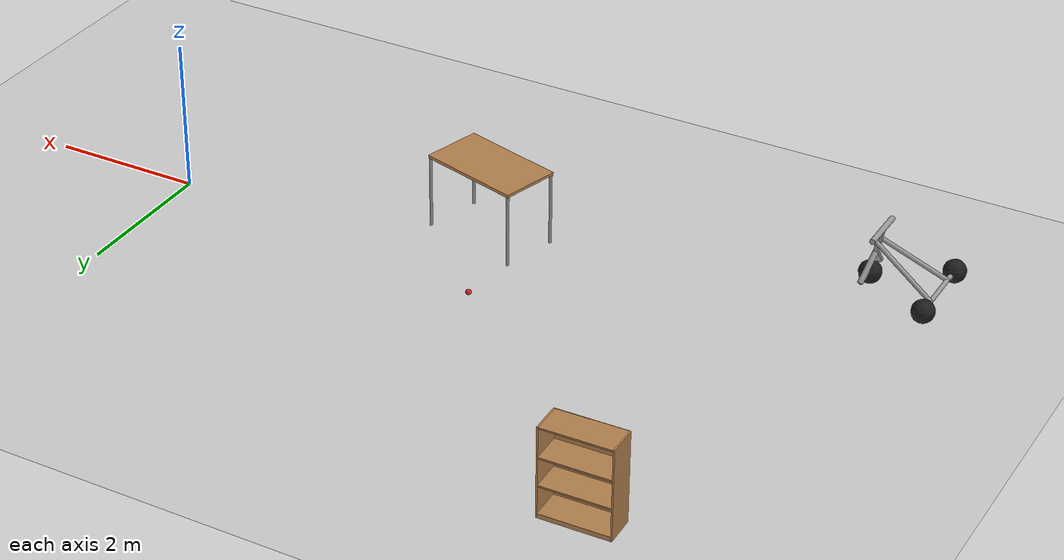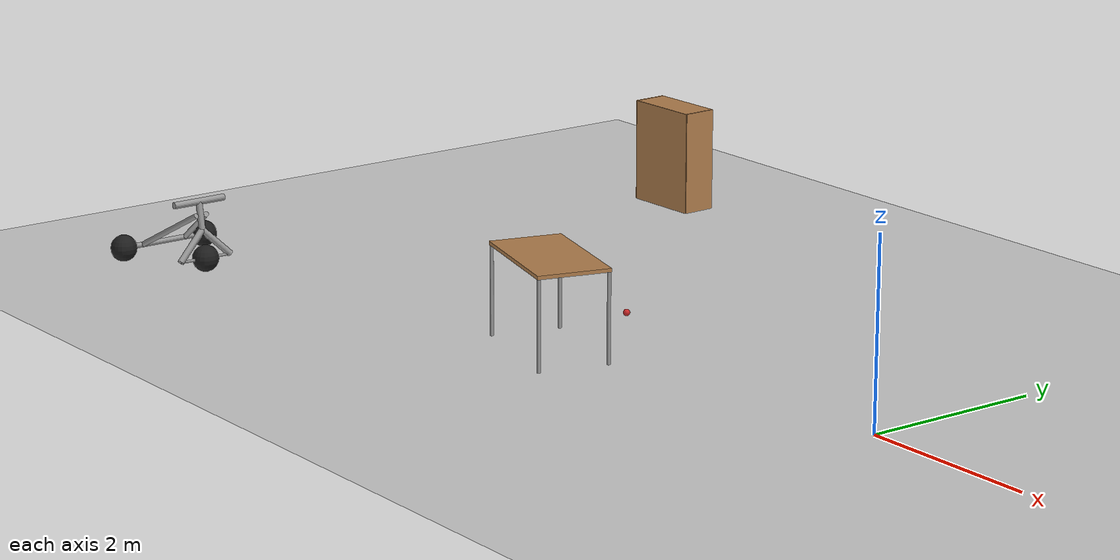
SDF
<sdf version="1.6">
 <world name="default">
  <model name="ground_plane">
   <static>1</static>
   <link name="link">
    <collision name="collision">
     <geometry><plane><normal>0 0 1</normal><size>100 100</size></plane></geometry>
     <surface><friction><ode><mu>100</mu><mu2>50</mu2></ode></friction></surface>
    </collision>
    <visual name="visual">
     <cast_shadows>0</cast_shadows>
     <geometry><plane><normal>0 0 1</normal><size>100 100</size></plane></geometry>
     <material>
      <script><uri>file://media/materials/scripts/gazebo.material</uri><name>Gazebo/Grey</name></script>
     </material>
    </visual>
   </link>
  </model>
  <model name="table">
   <static>0</static>
   <link name="link">
    <collision name="surface">
     <pose>0 0 1 0 -0 0</pose>
     <geometry><box><size>1.5 0.8 0.03</size></box></geometry>
     <surface><friction><ode><mu>0.6</mu><mu2>0.6</mu2></ode></friction></surface>
    </collision>
    <visual name="visual1">
     <pose>0 0 1 0 -0 0</pose>
     <geometry><box><size>1.4 0.8 0.04</size></box></geometry>
     <material>
      <script><uri>file://media/materials/scripts/gazebo.material</uri><name>Gazebo/Wood</name></script>
     </material>
    </visual>
    <collision name="front_left_leg">
     <pose>0.68 0.38 0.5 0 -0 0</pose>
     <geometry><cylinder><radius>0.02</radius><length>1</length></cylinder></geometry>
    </collision>
    <visual name="front_left_leg">
     <pose>0.68 0.38 0.5 0 -0 0</pose>
     <geometry><cylinder><radius>0.02</radius><length>1</length></cylinder></geometry>
     <material>
      <script><uri>file://media/materials/scripts/gazebo.material</uri><name>Gazebo/Grey</name></script>
     </material>
    </visual>
    <collision name="front_right_leg">
     <pose>0.68 -0.38 0.5 0 -0 0</pose>
     <geometry><cylinder><radius>0.02</radius><length>1</length></cylinder></geometry>
    </collision>
    <visual name="front_right_leg">
     <pose>0.68 -0.38 0.5 0 -0 0</pose>
     <geometry><cylinder><radius>0.02</radius><length>1</length></cylinder></geometry>
     <material>
      <script><uri>file://media/materials/scripts/gazebo.material</uri><name>Gazebo/Grey</name></script>
     </material>
    </visual>
    <collision name="back_right_leg">
     <pose>-0.68 -0.38 0.5 0 -0 0</pose>
     <geometry><cylinder><radius>0.02</radius><length>1</length></cylinder></geometry>
    </collision>
    <visual name="back_right_leg">
     <pose>-0.68 -0.38 0.5 0 -0 0</pose>
     <geometry><cylinder><radius>0.02</radius><length>1</length></cylinder></geometry>
     <material>
      <script><uri>file://media/materials/scripts/gazebo.material</uri><name>Gazebo/Grey</name></script>
     </material>
    </visual>
    <collision name="back_left_leg">
     <pose>-0.68 0.38 0.5 0 -0 0</pose>
     <geometry><cylinder><radius>0.02</radius><length>1</length></cylinder></geometry>
    </collision>
    <visual name="back_left_leg">
     <pose>-0.68 0.38 0.5 0 -0 0</pose>
     <geometry><cylinder><radius>0.02</radius><length>1</length></cylinder></geometry>
     <material>
      <script><uri>file://media/materials/scripts/gazebo.material</uri><name>Gazebo/Grey</name></script>
     </material>
    </visual>
    <inertial>
     <inertia><ixx>1</ixx><ixy>0</ixy><ixz>0</ixz><iyy>1</iyy><iyz>0</iyz><izz>1</izz></inertia>
     <mass>1</mass>
    </inertial>
   </link>
   <pose>-4.025 -0.858726 -6e-06 2e-06 -5e-06 -0.271572</pose>
  </model>
  <model name="bookshelf">
   <static>1</static>
   <link name="link">
    <inertial><mass>1</mass></inertial>
    <collision name="back">
     <pose>0 0.005 0.6 0 -0 0</pose>
     <geometry><box><size>0.9 0.01 1.2</size></box></geometry>
    </collision>
    <visual name="visual1">
     <pose>0 0.005 0.6 0 -0 0</pose>
     <geometry><box><size>0.9 0.01 1.2</size></box></geometry>
     <material>
      <script><uri>file://media/materials/scripts/gazebo.material</uri><name>Gazebo/Wood</name></script>
     </material>
    </visual>
    <collision name="left_side">
     <pose>0.45 -0.195 0.6 0 -0 0</pose>
     <geometry><box><size>0.02 0.4 1.2</size></box></geometry>
    </collision>
    <visual name="visual2">
     <pose>0.45 -0.195 0.6 0 -0 0</pose>
     <geometry><box><size>0.02 0.4 1.2</size></box></geometry>
     <material>
      <script><uri>file://media/materials/scripts/gazebo.material</uri><name>Gazebo/Wood</name></script>
     </material>
    </visual>
    <collision name="right_side">
     <pose>-0.45 -0.195 0.6 0 -0 0</pose>
     <geometry><box><size>0.02 0.4 1.2</size></box></geometry>
    </collision>
    <visual name="visual3">
     <pose>-0.45 -0.195 0.6 0 -0 0</pose>
     <geometry><box><size>0.02 0.4 1.2</size></box></geometry>
     <material>
      <script><uri>file://media/materials/scripts/gazebo.material</uri><name>Gazebo/Wood</name></script>
     </material>
    </visual>
    <collision name="bottom">
     <pose>0 -0.195 0.03 0 -0 0</pose>
     <geometry><box><size>0.88 0.4 0.06</size></box></geometry>
    </collision>
    <visual name="visual4">
     <pose>0 -0.195 0.03 0 -0 0</pose>
     <geometry><box><size>0.88 0.4 0.06</size></box></geometry>
     <material>
      <script><uri>file://media/materials/scripts/gazebo.material</uri><name>Gazebo/Wood</name></script>
     </material>
    </visual>
    <collision name="top">
     <pose>0 -0.195 1.19 0 -0 0</pose>
     <geometry><box><size>0.88 0.4 0.02</size></box></geometry>
    </collision>
    <visual name="visual5">
     <pose>0 -0.195 1.19 0 -0 0</pose>
     <geometry><box><size>0.88 0.4 0.02</size></box></geometry>
     <material>
      <script><uri>file://media/materials/scripts/gazebo.material</uri><name>Gazebo/Wood</name></script>
     </material>
    </visual>
    <collision name="low_shelf">
     <pose>0 -0.195 0.43 0 -0 0</pose>
     <geometry><box><size>0.88 0.4 0.02</size></box></geometry>
    </collision>
    <visual name="visual6">
     <pose>0 -0.195 0.43 0 -0 0</pose>
     <geometry><box><size>0.88 0.4 0.02</size></box></geometry>
     <material>
      <script><uri>file://media/materials/scripts/gazebo.material</uri><name>Gazebo/Wood</name></script>
     </material>
    </visual>
    <collision name="high_shelf">
     <pose>0 -0.195 0.8 0 -0 0</pose>
     <geometry><box><size>0.88 0.4 0.02</size></box></geometry>
    </collision>
    <visual name="visual7">
     <pose>0 -0.195 0.8 0 -0 0</pose>
     <geometry><box><size>0.88 0.4 0.02</size></box></geometry>
     <material>
      <script><uri>file://media/materials/scripts/gazebo.material</uri><name>Gazebo/Wood</name></script>
     </material>
    </visual>
   </link>
   <pose>-7.78425 3.60474 0 0 0 -3.11544</pose>
  </model>
  <model name="cricket_ball">
   <link name="link">
    <pose>0 0 0.0375 0 -0 0</pose>
    <inertial>
     <mass>0.1467</mass>
     <inertia>
      <ixx>8.25187e-05</ixx>
      <ixy>0</ixy>
      <ixz>0</ixz>
      <iyy>8.25187e-05</iyy>
      <iyz>0</iyz>
      <izz>8.25187e-05</izz>
     </inertia>
    </inertial>
    <collision name="collision">
     <geometry><sphere><radius>0.0375</radius></sphere></geometry>
     <surface>
      <contact>
       <poissons_ratio>0.347</poissons_ratio>
       <elastic_modulus>8.8e+09</elastic_modulus>
       <ode><kp>100000</kp><kd>100</kd><max_vel>100</max_vel><min_depth>0.001</min_depth></ode>
      </contact>
      <friction>
       <torsional>
        <coefficient>1</coefficient>
        <use_patch_radius>0</use_patch_radius>
        <surface_radius>0.01</surface_radius>
       </torsional>
      </friction>
     </surface>
    </collision>
    <visual name="visual">
     <geometry><sphere><radius>0.0375</radius></sphere></geometry>
     <material>
      <script><uri>file://media/materials/scripts/gazebo.material</uri><name>Gazebo/Red</name></script>
     </material>
    </visual>
    <velocity_decay><linear>0</linear><angular>0.005</angular></velocity_decay>
   </link>
   <pose>-4.49449 0.510747 -0.000766 -0.114049 -0.016048 -0.073046</pose>
  </model>
  <model name="trisphere_cycle">
   <link name="frame">
    <pose>-0.408559 0 0.385023 0 -0.522021 0</pose>
    <inertial>
     <mass>10</mass>
     <inertia><ixx>0.228</ixx><iyy>0.743521</iyy><izz>0.965521</izz><ixy>0</ixy><ixz>0</ixz><iyz>0</iyz></inertia>
    </inertial>
    <collision name="axle_collision">
     <pose>-0.471335 0 0 1.5708 -0 0</pose>
     <geometry><cylinder><length>1.03923</length><radius>0.03</radius></cylinder></geometry>
    </collision>
    <visual name="axle_visual">
     <pose>-0.471335 0 0 1.5708 -0 0</pose>
     <geometry><cylinder><length>1.03923</length><radius>0.03</radius></cylinder></geometry>
     <material>
      <script><uri>file://media/materials/scripts/gazebo.material</uri><name>Gazebo/Grey</name></script>
     </material>
    </visual>
    <collision name="frame_left_collision">
     <pose>0 0.171552 0 2.986 1.57079 2.76675</pose>
     <geometry><cylinder><length>1.00317</length><radius>0.03</radius></cylinder></geometry>
    </collision>
    <visual name="frame_left_visual">
     <pose>0 0.171552 0 2.986 1.57079 2.76675</pose>
     <geometry><cylinder><length>1.00317</length><radius>0.03</radius></cylinder></geometry>
     <material>
      <script><uri>file://media/materials/scripts/gazebo.material</uri><name>Gazebo/Grey</name></script>
     </material>
    </visual>
    <collision name="frame_right_collision">
     <pose>0 -0.171552 0 -2.986 1.57079 -2.76675</pose>
     <geometry><cylinder><length>1.00317</length><radius>0.03</radius></cylinder></geometry>
    </collision>
    <visual name="frame_right_visual">
     <pose>0 -0.171552 0 -2.986 1.57079 -2.76675</pose>
     <geometry><cylinder><length>1.00317</length><radius>0.03</radius></cylinder></geometry>
     <material>
      <script><uri>file://media/materials/scripts/gazebo.material</uri><name>Gazebo/Grey</name></script>
     </material>
    </visual>
   </link>
   <link name="fork">
    <pose>0.041441 0 0.385023 0 -0.174533 0</pose>
    <inertial>
     <mass>3</mass>
     <inertia>
      <ixx>0.158203</ixx>
      <iyy>0.0583594</iyy>
      <izz>0.102656</izz>
      <ixy>0</ixy>
      <ixz>0</ixz>
      <iyz>0</iyz>
     </inertia>
    </inertial>
    <collision name="handlebars_collision">
     <pose>0 0 0.397748 1.5708 -0 0</pose>
     <geometry><cylinder><length>0.636396</length><radius>0.0375</radius></cylinder></geometry>
    </collision>
    <visual name="handlebars_visual">
     <pose>0 0 0.397748 1.5708 -0 0</pose>
     <geometry><cylinder><length>0.636396</length><radius>0.0375</radius></cylinder></geometry>
     <material>
      <script><uri>file://media/materials/scripts/gazebo.material</uri><name>Gazebo/Grey</name></script>
     </material>
    </visual>
    <collision name="headtube_collision">
     <pose>0 0 0.238649 0 -0 0</pose>
     <geometry><cylinder><length>0.318198</length><radius>0.0375</radius></cylinder></geometry>
    </collision>
    <visual name="headtube_visual">
     <pose>0 0 0.238649 0 -0 0</pose>
     <geometry><cylinder><length>0.318198</length><radius>0.0375</radius></cylinder></geometry>
     <material>
      <script><uri>file://media/materials/scripts/gazebo.material</uri><name>Gazebo/Grey</name></script>
     </material>
    </visual>
    <collision name="spindle_collision">
     <pose>0 0 -0.238649 1.5708 -0 0</pose>
     <geometry><cylinder><length>0.636396</length><radius>0.015</radius></cylinder></geometry>
    </collision>
    <visual name="spindle_visual">
     <pose>0 0 -0.238649 1.5708 -0 0</pose>
     <geometry><cylinder><length>0.636396</length><radius>0.015</radius></cylinder></geometry>
     <material>
      <script><uri>file://media/materials/scripts/gazebo.material</uri><name>Gazebo/Grey</name></script>
     </material>
    </visual>
    <collision name="fork_left_collision">
     <pose>0 0.159099 -0.07955 0.785398 -0 0</pose>
     <geometry><cylinder><length>0.45</length><radius>0.0375</radius></cylinder></geometry>
    </collision>
    <visual name="fork_left_visual">
     <pose>0 0.159099 -0.07955 0.785398 -0 0</pose>
     <geometry><cylinder><length>0.45</length><radius>0.0375</radius></cylinder></geometry>
     <material>
      <script><uri>file://media/materials/scripts/gazebo.material</uri><name>Gazebo/Grey</name></script>
     </material>
    </visual>
    <collision name="fork_right_collision">
     <pose>0 -0.159099 -0.07955 -0.785398 0 0</pose>
     <geometry><cylinder><length>0.45</length><radius>0.0375</radius></cylinder></geometry>
    </collision>
    <visual name="fork_right_visual">
     <pose>0 -0.159099 -0.07955 -0.785398 0 0</pose>
     <geometry><cylinder><length>0.45</length><radius>0.0375</radius></cylinder></geometry>
     <material>
      <script><uri>file://media/materials/scripts/gazebo.material</uri><name>Gazebo/Grey</name></script>
     </material>
    </visual>
   </link>
   <link name="wheel_front">
    <pose>0.082882 0 0.15 0 -0 0</pose>
    <inertial>
     <mass>0.5</mass>
     <inertia><ixx>0.0045</ixx><iyy>0.0045</iyy><izz>0.0045</izz><ixy>0</ixy><ixz>0</ixz><iyz>0</iyz></inertia>
    </inertial>
    <collision name="collision">
     <geometry><sphere><radius>0.15</radius></sphere></geometry>
     <surface><contact><ode><kp>1e+08</kp><kd>1</kd><min_depth>0.0005</min_depth></ode></contact></surface>
    </collision>
    <visual name="visual">
     <geometry><sphere><radius>0.15</radius></sphere></geometry>
     <material>
      <script><uri>file://media/materials/scripts/gazebo.material</uri><name>Gazebo/Black</name></script>
     </material>
    </visual>
   </link>
   <joint name="wheel_front_steer" type="revolute">
    <parent>frame</parent>
    <child>fork</child>
    <axis>
     <xyz>0 0 1</xyz>
     <limit><lower>-0.959931</lower><upper>0.959931</upper></limit>
     <use_parent_model_frame>0</use_parent_model_frame>
     <dynamics><spring_reference>0</spring_reference><spring_stiffness>0</spring_stiffness></dynamics>
    </axis>
   </joint>
   <joint name="wheel_front_spin" type="revolute">
    <parent>fork</parent>
    <child>wheel_front</child>
    <axis>
     <xyz>0 1 0</xyz>
     <use_parent_model_frame>0</use_parent_model_frame>
     <limit><lower>-1e+16</lower><upper>1e+16</upper></limit>
     <dynamics><spring_reference>0</spring_reference><spring_stiffness>0</spring_stiffness></dynamics>
    </axis>
   </joint>
   <link name="wheel_rear_left">
    <pose>-0.817118 0.519615 0.15 0 -0 0</pose>
    <inertial>
     <mass>0.5</mass>
     <inertia><ixx>0.0045</ixx><iyy>0.0045</iyy><izz>0.0045</izz><ixy>0</ixy><ixz>0</ixz><iyz>0</iyz></inertia>
    </inertial>
    <collision name="collision">
     <geometry><sphere><radius>0.15</radius></sphere></geometry>
     <surface><contact><ode><kp>1e+08</kp><kd>1</kd><min_depth>0.0005</min_depth></ode></contact></surface>
    </collision>
    <visual name="visual">
     <geometry><sphere><radius>0.15</radius></sphere></geometry>
     <material>
      <script><uri>file://media/materials/scripts/gazebo.material</uri><name>Gazebo/Black</name></script>
     </material>
    </visual>
   </link>
   <joint name="wheel_rear_left_spin" type="revolute">
    <parent>frame</parent>
    <child>wheel_rear_left</child>
    <axis>
     <xyz>0 1 0</xyz>
     <use_parent_model_frame>0</use_parent_model_frame>
     <limit><lower>-1e+16</lower><upper>1e+16</upper></limit>
     <dynamics><spring_reference>0</spring_reference><spring_stiffness>0</spring_stiffness></dynamics>
    </axis>
   </joint>
   <link name="wheel_rear_right">
    <pose>-0.817118 -0.519615 0.15 0 -0 0</pose>
    <inertial>
     <mass>0.5</mass>
     <inertia><ixx>0.0045</ixx><iyy>0.0045</iyy><izz>0.0045</izz><ixy>0</ixy><ixz>0</ixz><iyz>0</iyz></inertia>
    </inertial>
    <collision name="collision">
     <geometry><sphere><radius>0.15</radius></sphere></geometry>
     <surface><contact><ode><kp>1e+08</kp><kd>1</kd><min_depth>0.0005</min_depth></ode></contact></surface>
    </collision>
    <visual name="visual">
     <geometry><sphere><radius>0.15</radius></sphere></geometry>
     <material>
      <script><uri>file://media/materials/scripts/gazebo.material</uri><name>Gazebo/Black</name></script>
     </material>
    </visual>
   </link>
   <joint name="wheel_rear_right_spin" type="revolute">
    <parent>frame</parent>
    <child>wheel_rear_right</child>
    <axis>
     <xyz>0 1 0</xyz>
     <use_parent_model_frame>0</use_parent_model_frame>
     <limit><lower>-1e+16</lower><upper>1e+16</upper></limit>
     <dynamics><spring_reference>0</spring_reference><spring_stiffness>0</spring_stiffness></dynamics>
    </axis>
   </joint>
   <pose>-8.71976 -2.17243 -0.000501 0 1e-06 -0.000525</pose>
  </model>
 </world>
</sdf>
